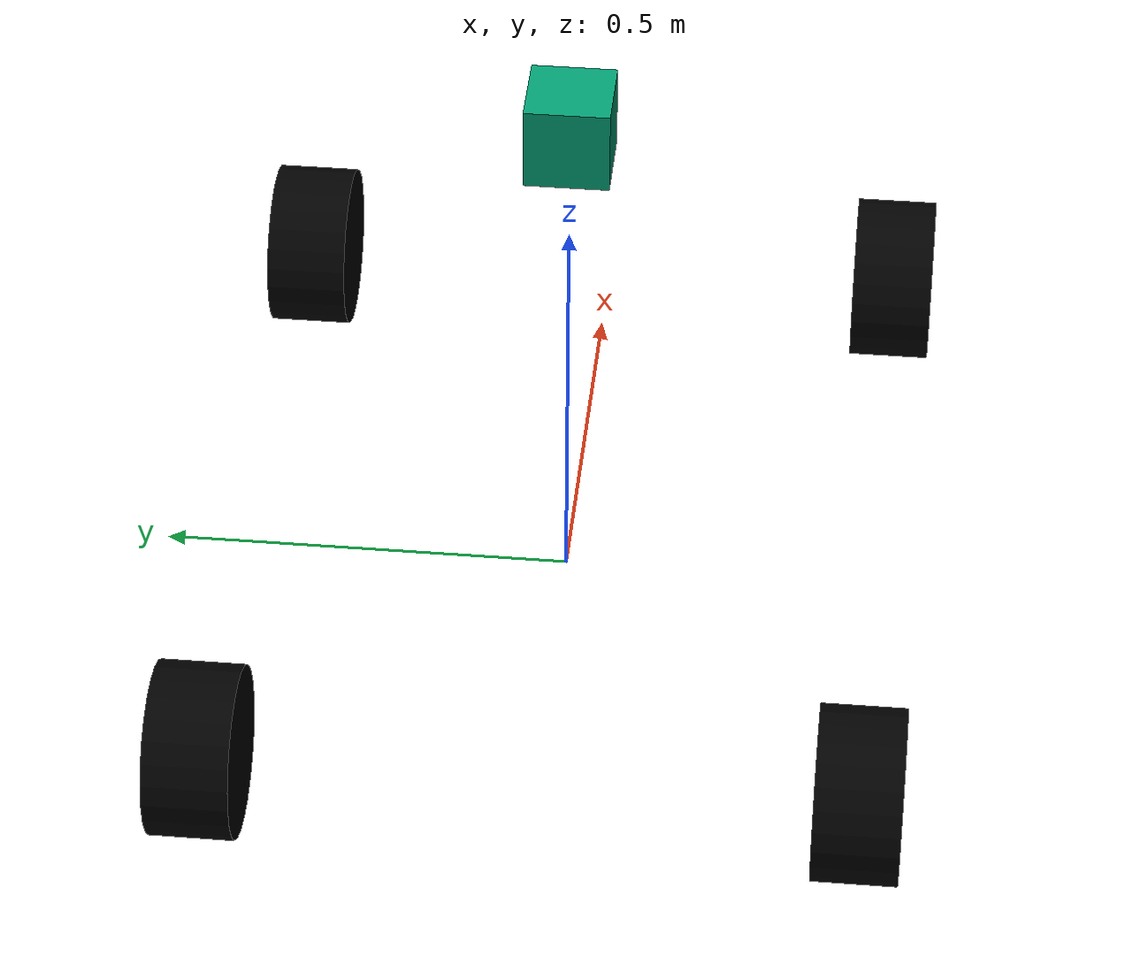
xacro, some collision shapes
<?xml version="1.0"?>
<robot name="velmobil" xmlns:xacro="http://www.ros.org/wiki/xacro" xmlns:gz="http://gazebosim.org/schema">

  <xacro:include filename="$(find velmobil_description)/urdf/properties.urdf.xacro" />
  <xacro:include filename="$(find velmobil_description)/urdf/macros.urdf.xacro" />

  <link name="world" />
  <link name="base_footprint" />
  <link name="base_link">
    <collision>
      <origin xyz="0 0 0.5" rpy="0 0 0"/>
      <geometry><box size="0.1 0.1 0.1"/></geometry>  <!-- mock colision -->
    </collision>
    <visual>
      <geometry>
        <mesh filename="file://$(find velmobil_description)/models/base.dae" />
      </geometry>
    </visual>
    <inertial>
      <origin xyz="0 0 0.5" rpy="0 0 0"/>
      <mass value="0.5"/>
      <inertia ixx="0.13" ixy="0.0" ixz="0.0" iyy="0.42" iyz="0.0" izz="0.48"/>
    </inertial>
  </link>
  <joint name="footprint_joint" type="fixed">
      <origin xyz="0 0 ${wheel_radius + wheel_base_offset}" rpy="0 0 0"/>
      <parent link="base_footprint"/>
      <child link="base_link"/>
  </joint>
  <joint name="world_base_joint" type="planar">
    <origin xyz="0 0 0" rpy="0 0 0"/>
    <parent link="world"/>
    <child link="base_footprint"/>
  </joint>

  <xacro:wheel prefix="front_left" x="0.5" y="${wheel_y_offset}"/>
  <xacro:wheel prefix="front_right" x="0.5" y="${-wheel_y_offset}"/>
  <xacro:wheel prefix="rear_left" x="-0.5" y="${wheel_y_offset}"/>
  <xacro:wheel prefix="rear_right" x="-0.5" y="${-wheel_y_offset}"/>

  <xacro:wheel_friction prefix="front_left" dir="1"/>
  <xacro:wheel_friction prefix="front_right" dir="-1"/>
  <xacro:wheel_friction prefix="rear_left" dir="-1"/>
  <xacro:wheel_friction prefix="rear_right" dir="1"/>

  <ros2_control name="GazeboSimSystem" type="system">
    <hardware><plugin>gz_ros2_control/GazeboSimSystem</plugin></hardware>
    <xacro:joint_interface name="front_left_wheel_joint"/>
    <xacro:joint_interface name="front_right_wheel_joint"/>
    <xacro:joint_interface name="rear_left_wheel_joint"/>
    <xacro:joint_interface name="rear_right_wheel_joint"/>
  </ros2_control>

  <gazebo>
    <plugin filename="gz_ros2_control-system" name="gz_ros2_control::GazeboSimROS2ControlPlugin">
      <parameters>$(find velmobil_description)/control_config/velmobil.yaml</parameters>
      <ros>
        <remapping>/mecanum_drive_controller/reference:=/cmd_vel</remapping>
        <remapping>/mecanum_drive_controller/odom:=/odom</remapping>
      </ros>
    </plugin>
  </gazebo>

</robot>

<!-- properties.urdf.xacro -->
<robot name="velmobil" xmlns:xacro="http://www.ros.org/wiki/xacro" xmlns:gz="http://gazebosim.org/schema">

    <material name="orange"><color rgba="0.8 0.4 0.0 1.0"/></material>
    <material name="black"><color rgba="0 0 0 1.0"/></material>
    <material name="white"><color rgba="1 1 1 1.0"/></material>

    <xacro:property name="wheel_radius" value="0.1016"/>
    <xacro:property name="lidar_l_centre_offset" value="0 0.3 0.176"/>
    <xacro:property name="lidar_l_orientation" value="0 0 0"/>
    <xacro:property name="lidar_r_centre_offset" value="0 -0.3 0.176"/>
    <xacro:property name="lidar_r_orientation" value="0 0 -3.141592"/>
    <xacro:property name="imu_centre_ofset" value="0 0 0"/>
    <xacro:property name="wheel_y_offset" value="0.38"/>
    <xacro:property name="wheel_centre_x_offset" value="0.36"/>
    <xacro:property name="wheel_r_base_x_offset" value="${-wheel_centre_x_offset + 0.081}"/>
    <xacro:property name="wheel_f_front_x_offset" value="${0.445 - 0.081 - wheel_centre_x_offset}"/>
    <xacro:property name="wheel_base_offset" value="0.05"/>

</robot>

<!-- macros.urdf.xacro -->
<robot name="velmobil" xmlns:xacro="http://www.ros.org/wiki/xacro" xmlns:gz="http://gazebosim.org/schema">

    <xacro:macro name="wheel" params="prefix x y">
        <link name="${prefix}_wheel">
            <collision>
                <origin xyz="0 0 0" rpy="${-pi/2} 0 0"/>
                <geometry><cylinder length="0.1" radius="${wheel_radius}"/></geometry>
            </collision>
            <visual>
                <origin xyz="0 0 0" rpy="${-pi/2} 0 0"/>
                <geometry>
                    <cylinder length="0.1" radius="${wheel_radius}"/>
                </geometry>
                <material name="black"/>
            </visual>
            <inertial>
                <mass value="1.0"/>
                <inertia ixx="0.145" ixy="0.0" ixz="0.0" iyy="0.145" iyz="0.0" izz="0.125"/>
            </inertial>
        </link>
        <joint name="${prefix}_wheel_joint" type="continuous">
            <origin xyz="${x} ${y} ${-wheel_base_offset}" rpy="0 0 0"/>
            <parent link="base_link"/>
            <child link="${prefix}_wheel"/>
            <axis xyz="0 1 0"/>
            <dynamics damping="0.2"/>
        </joint>
    </xacro:macro>

    <xacro:macro name="wheel_friction" params="prefix dir">
        <gazebo reference="${prefix}_wheel">
            <collision>
                <surface>
                    <friction>
                        <ode>
                            <mu>1.0</mu>
                            <mu2>0.01</mu2>
                            <fdir1>1 ${dir} 0</fdir1>
                            <slip1>0.0</slip1>
                            <slip2>0.5</slip2>
                        </ode>
                    </friction>
                    <contact>
                        <ode>
                            <kp>1000000.0</kp>
                            <kd>1.0</kd>
                            <min_depth>0.001</min_depth>
                        </ode>
                    </contact>
                </surface>
            </collision>
            <selfCollide>false</selfCollide>
        </gazebo>
    </xacro:macro>

    <xacro:macro name="joint_interface" params="name">
        <joint name="${name}">
            <command_interface name="velocity">
                <param name="min">-10000</param>
                <param name="max">10000</param>
            </command_interface>
            <state_interface name="position"/>
            <state_interface name="velocity"/>
        </joint>
    </xacro:macro>

</robot>
